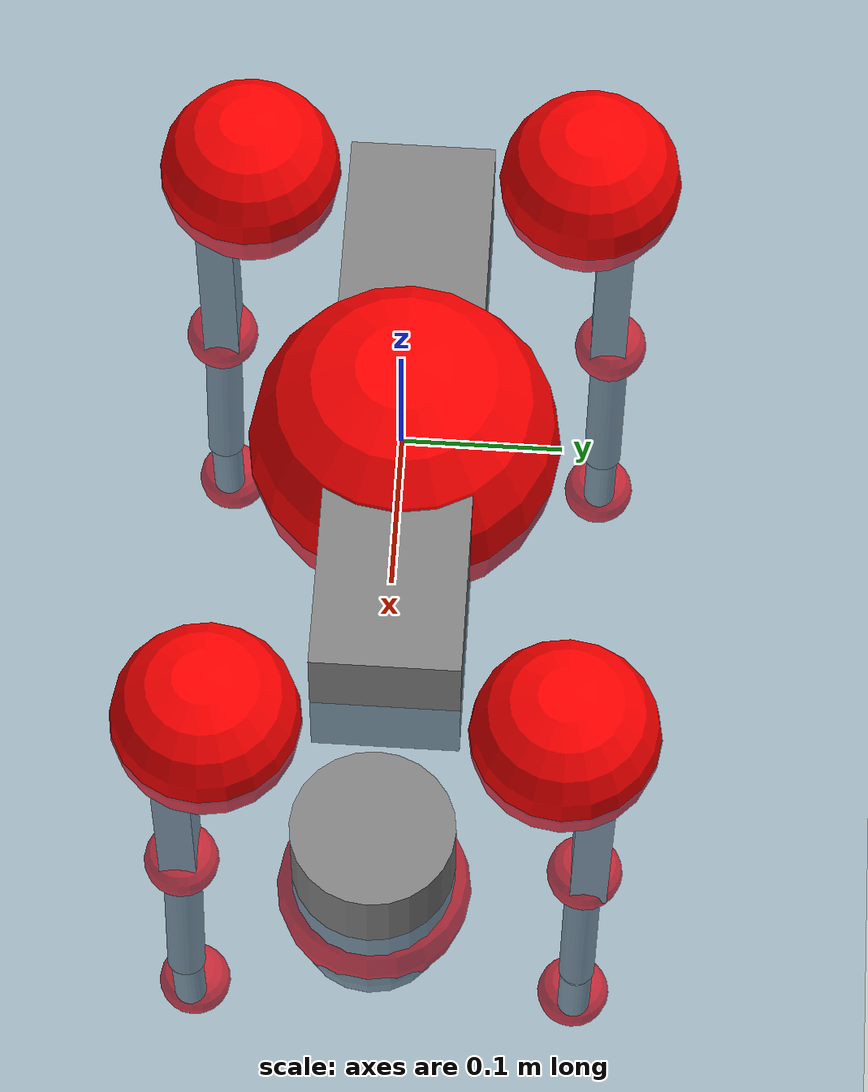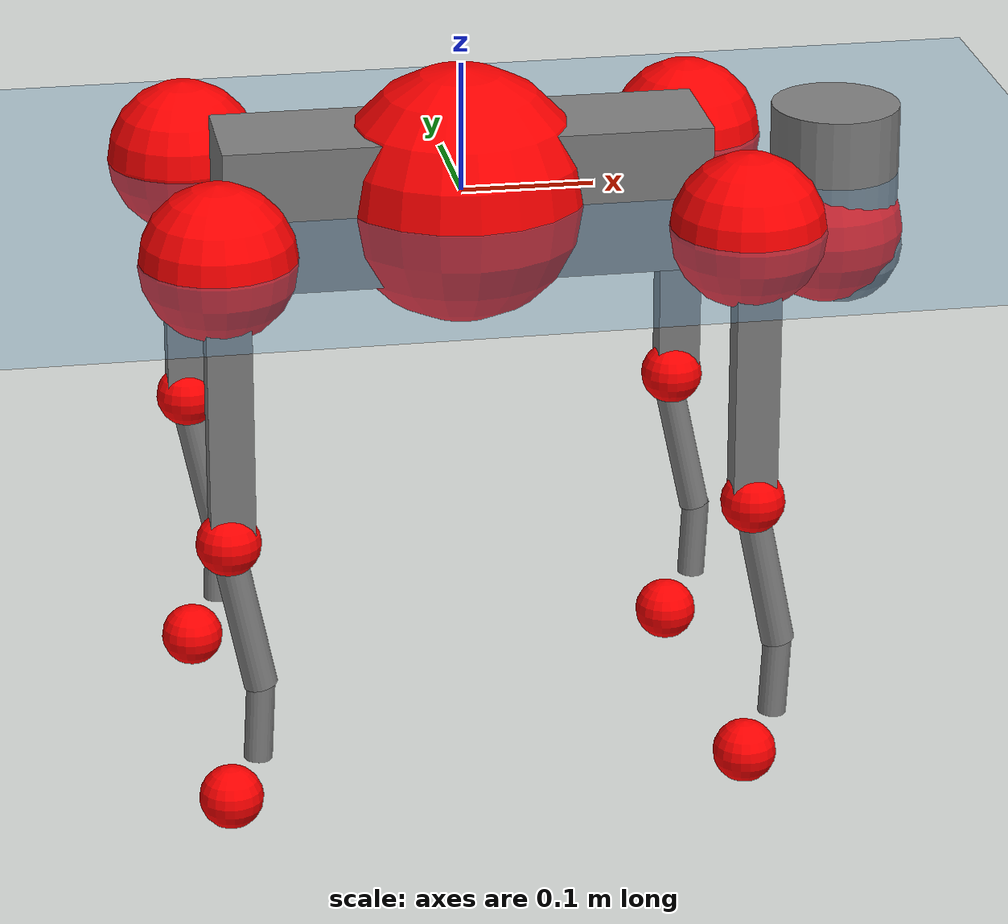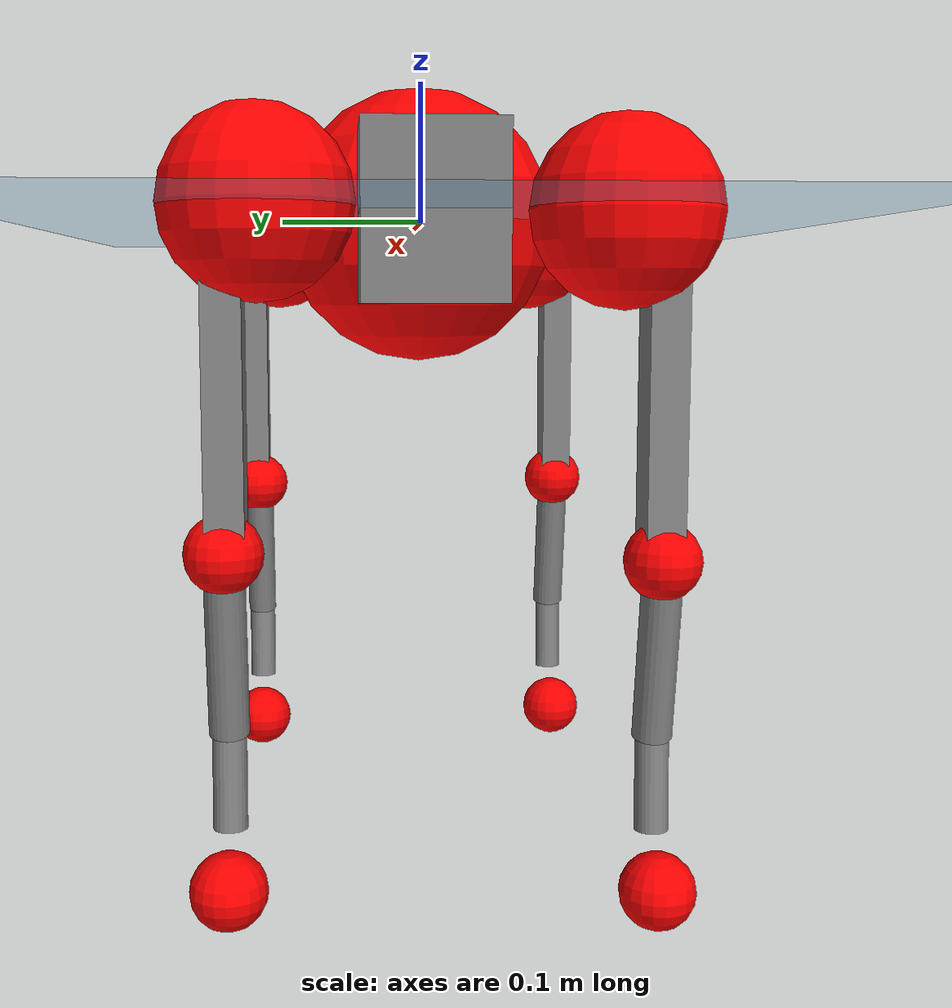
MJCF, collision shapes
<mujoco model="go2">
  <compiler angle="radian" assetdir="assets" balanceinertia="true" inertiafromgeom="false"/>

  <option timestep="0.005" density="1.2" viscosity="2e-05"/>

  <size nkey="1"/>

  <visual>
    <quality shadowsize="8192"/>
    <map shadowclip="0.5"/>
  </visual>

  <default>
    <default class="/">
      <geom contype="0" conaffinity="0" group="1" solref="-1000 -80"/>
      <site size="0.01 0.005 0.005" group="5"/>
      <general forcelimited="true" biastype="affine" gainprm="20" biasprm="0 -20 -0.5"/>
      <default class="go2">
        <joint armature="0.01" damping="0.01" frictionloss="0.2"/>
        <geom condim="1" margin="0.001"/>
        <default class="visual">
          <geom type="mesh" group="2"/>
        </default>
        <default class="collision">
          <geom group="3"/>
          <default class="foot">
            <geom size="0.022 0 0" condim="6" priority="1" friction="0.8 0.02 0.01" solimp="0.015 1 0.022"/>
          </default>
        </default>
        <default class="reward_collision_sphere">
          <geom group="5" rgba="1 0 0 1"/>
        </default>
      </default>
    </default>
  </default>

  <asset>
    <texture type="skybox" colorspace="auto" name="//unnamed_texture_0" builtin="gradient" rgb1="0.95 0.95 0.95" rgb2="0.95 0.95 0.95" width="100" height="600"/>
    <texture type="2d" colorspace="auto" name="texplane" builtin="checker" rgb1="0.345 0.575 0.748" rgb2="0.345 0.575 0.748" markrgb="1 1 1" width="512" height="512"/>
    <material name="MatPlane" class="/" texture="texplane" texuniform="true" texrepeat="2 2" specular="0.9"/>
    <material name="metal" class="/" rgba="0.9 0.95 0.95 1"/>
    <material name="black" class="/" rgba="0 0 0 1"/>
    <material name="white" class="/"/>
    <material name="gray" class="/" rgba="0.671705 0.692426 0.77427 1"/>
    <mesh name="base_0" class="/" file="base_0.obj"/>
    <mesh name="base_1" class="/" file="base_1.obj"/>
    <mesh name="base_2" class="/" file="base_2.obj"/>
    <mesh name="base_3" class="/" file="base_3.obj"/>
    <mesh name="base_4" class="/" file="base_4.obj"/>
    <mesh name="hip_0" class="/" file="hip_0.obj"/>
    <mesh name="hip_1" class="/" file="hip_1.obj"/>
    <mesh name="thigh_0" class="/" file="thigh_0.obj"/>
    <mesh name="thigh_1" class="/" file="thigh_1.obj"/>
    <mesh name="thigh_mirror_0" class="/" file="thigh_mirror_0.obj"/>
    <mesh name="thigh_mirror_1" class="/" file="thigh_mirror_1.obj"/>
    <mesh name="calf_0" class="/" file="calf_0.obj"/>
    <mesh name="calf_1" class="/" file="calf_1.obj"/>
    <mesh name="calf_mirror_0" class="/" file="calf_mirror_0.obj"/>
    <mesh name="calf_mirror_1" class="/" file="calf_mirror_1.obj"/>
    <mesh name="foot" class="/" file="foot.obj"/>
  </asset>

  <worldbody>
    <geom name="floor" class="/" size="100 100 0.125" type="plane" group="0" material="MatPlane"/>
    <light name="toplight_shadow" class="/" pos="0 0 5" dir="0.0990148 0.0990148 -0.990148" type="directional" ambient="0.04 0.04 0.04" diffuse="0.55 0.55 0.55" specular="0.12 0.12 0.12"/>
    <light name="toplight_fill" class="/" pos="0 0 5" dir="0.0990148 0.0990148 -0.990148" type="directional" castshadow="false" ambient="0.04 0.04 0.04" diffuse="0.3 0.3 0.3" specular="0.08 0.08 0.08"/>
    <body name="trunk" childclass="go2" pos="-0.000335681 0.00176146 -0.00192736" quat="1 -8.05343e-05 0.000227159 -0.00045582">
      <inertial pos="0.0193278 0.00145784 -0.00486713" quat="-0.00214242 0.714524 0.000992256 0.699607" mass="6.61426" diaginertia="0.110251 0.0720843 0.0220222"/>
      <joint name="//unnamed_joint_0" type="free" armature="0" damping="0" frictionloss="0"/>
      <geom name="//unnamed_geom_1" class="visual" material="black" mesh="base_0"/>
      <geom name="//unnamed_geom_2" class="visual" material="black" mesh="base_1"/>
      <geom name="//unnamed_geom_3" class="visual" material="black" mesh="base_2"/>
      <geom name="//unnamed_geom_4" class="visual" material="white" mesh="base_3"/>
      <geom name="//unnamed_geom_5" class="visual" material="gray" mesh="base_4"/>
      <geom name="trunk_1" class="collision" size="0.183957 0.0457202 0.0557445" type="box"/>
      <geom name="trunk_2" class="collision" size="0.0488987 0.0440088" pos="0.287606 0 0.00984073" type="cylinder"/>
      <geom name="trunk_3" class="collision" size="0.0459647" pos="0.295679 0 -0.0590444"/>
      <geom name="//unnamed_geom_9" class="reward_collision_sphere" size="0.0977973"/>
      <geom name="//unnamed_geom_10" class="reward_collision_sphere" size="0.0586784" pos="0.28256 0 -0.0442833"/>
      <site name="imu" pos="-0.0177446 0.019879 0.0287866" size="0.00977973"/>
      <camera name="track" pos="0 -1.88141 0" quat="0.707107 0.707107 0 0" mode="trackcom"/>
      <camera name="ego_camera" pos="0.314853 0 0.0442833" quat="-0.5 -0.5 0.5 0.5"/>
      <body name="FL_hip" pos="0.194952 0.0438423 -0.00171868" quat="0.999998 -0.000908035 0.000307476 0.00145195">
        <inertial pos="-0.00732129 0.00264473 -0.00277119" quat="0.496679 0.499985 0.505343 0.49795" mass="0.616054" diaginertia="0.000897311 0.000422456 0.0004395"/>
        <joint name="FL_hip_joint" pos="0 0 0" axis="1 0.00014251 1.04604e-05" range="-1.0908 1.05661" armature="0.00971747" damping="0.0237883" frictionloss="0.177316"/>
        <geom name="//unnamed_geom_11" class="visual" material="metal" mesh="hip_0"/>
        <geom name="//unnamed_geom_12" class="visual" material="gray" mesh="hip_1"/>
        <geom name="//unnamed_geom_13" class="collision" size="0.0449868 0.0195595" pos="0 0.0752563 0" quat="0.707107 0.707107 0 0" type="cylinder"/>
        <geom name="//unnamed_geom_14" class="reward_collision_sphere" size="0.0586784" pos="0 0.0658493 0"/>
        <body name="FL_thigh" pos="0.000993265 0.0884929 -0.00180878" quat="1 -6.61451e-05 -8.11843e-05 -0.000138927">
          <inertial pos="-0.00323883 -0.018586 -0.0281757" quat="0.83433 0.0867608 -0.0291663 0.543614" mass="1.04981" diaginertia="0.00639399 0.00421692 0.000834548"/>
          <joint name="FL_thigh_joint" pos="0 0 0" axis="-0.0146387 0.999689 0.0201703" stiffness="0.00989383" range="-1.57573 3.41824" armature="0.00895647" damping="0.0284354" frictionloss="0.19771"/>
          <geom name="//unnamed_geom_15" class="visual" material="metal" mesh="thigh_0"/>
          <geom name="//unnamed_geom_16" class="visual" material="gray" mesh="thigh_1"/>
          <geom name="//unnamed_geom_17" class="collision" size="0.104154 0.0119802 0.0166255" pos="0 0 -0.104804" quat="0.707107 0 0.707107 0" type="box"/>
          <body name="FL_calf" pos="-0.00413788 -0.00287291 -0.209326" quat="1 -4.37619e-05 -2.64612e-05 9.24352e-06">
            <inertial pos="0.00360624 -0.00216515 -0.1384" quat="0.710695 0.00193036 -0.00501231 0.70348" mass="0.217475" diaginertia="0.00155547 0.00103482 4.85439e-05"/>
            <joint name="FL_calf_joint" pos="0 0 0" axis="0.00480761 0.999975 0.00510728" stiffness="0.0230159" range="-2.70872 -0.806819" armature="0.00994456" damping="0.00431405" frictionloss="0.181103"/>
            <geom name="//unnamed_geom_18" class="visual" material="gray" mesh="calf_0"/>
            <geom name="//unnamed_geom_19" class="visual" material="black" mesh="calf_1"/>
            <geom name="FL_calf0" class="collision" size="0.0117357 0.0586784" pos="0.00807314 0 -0.0590444" quat="0.994493 0 -0.104807 0" type="cylinder"/>
            <geom name="//unnamed_geom_21" class="collision" size="0.0107577 0.0317841" pos="0.0201829 0 -0.145643" quat="0.999688 0 0.0249974 0" type="cylinder"/>
            <geom name="//unnamed_geom_22" class="visual" pos="0 0 -0.209607" quat="1 0 0 0" material="black" mesh="foot"/>
            <geom name="FL_foot" class="foot" size="0.0244264" pos="-0.00201829 0 -0.209607"/>
            <geom name="//unnamed_geom_24" class="reward_collision_sphere" size="0.0244493"/>
            <geom name="//unnamed_geom_25" class="reward_collision_sphere" size="0.0244493" pos="-0.00201829 0 -0.209607"/>
            <site name="FL_foot" class="foot" pos="-0.00201829 0 -0.209607" size="0.00977973"/>
          </body>
        </body>
      </body>
      <body name="FR_hip" pos="0.19701 -0.0417589 -0.00265786" quat="1 4.79791e-05 4.94753e-05 2.35211e-05">
        <inertial pos="-0.00801768 -0.00240966 -0.000550456" quat="0.500477 0.512545 0.498536 0.488141" mass="0.614755" diaginertia="0.000873297 0.000436782 0.000439552"/>
        <joint name="FR_hip_joint" pos="0 0 0" axis="0.999999 0.00103409 -0.000357049" stiffness="0.0117529" range="-1.04567 1.05832" armature="0.00967229" damping="0.00754007" frictionloss="0.22117"/>
        <geom name="//unnamed_geom_26" class="visual" pos="0 -3.7781e-10 -1.62051e-08" quat="4.63268e-05 1 0 0" material="metal" mesh="hip_0"/>
        <geom name="//unnamed_geom_27" class="visual" pos="0 -6.12475e-10 4.00813e-08" quat="4.63268e-05 1 0 0" material="gray" mesh="hip_1"/>
        <geom name="//unnamed_geom_28" class="collision" size="0.0449868 0.0195595" pos="0 -0.0752563 0" quat="0.707107 0.707107 0 0" type="cylinder"/>
        <geom name="//unnamed_geom_29" class="reward_collision_sphere" size="0.0586784" pos="0 -0.0658493 0"/>
        <body name="FR_thigh" pos="0.00184404 -0.089983 0.000836609" quat="0.999999 -0.000868129 -0.000318029 0.00101624">
          <inertial pos="-0.0039739 0.0213062 -0.029314" quat="0.555507 -0.0002712 0.0902564 0.826599" mass="1.07683" diaginertia="0.0058878 0.00415459 0.000783174"/>
          <joint name="FR_thigh_joint" pos="0 0 0" axis="5.95309e-05 -1 -0.000178798" range="-3.43841 1.56119" armature="0.0100273" damping="0.0154209" frictionloss="0.219905"/>
          <geom name="//unnamed_geom_30" class="visual" material="metal" mesh="thigh_mirror_0"/>
          <geom name="//unnamed_geom_31" class="visual" material="gray" mesh="thigh_mirror_1"/>
          <geom name="//unnamed_geom_32" class="collision" size="0.104154 0.0119802 0.0166255" pos="0 0 -0.104804" quat="0.707107 0 0.707107 0" type="box"/>
          <body name="FR_calf" pos="0.000908555 0.000613935 -0.209355" quat="1 5.50547e-05 4.24782e-05 8.58811e-05">
            <inertial pos="0.008672 -0.000121982 -0.14341" quat="0.702082 0.00198588 -0.00357076 0.712084" mass="0.238694" diaginertia="0.00169247 0.00108197 5.29609e-05"/>
            <joint name="FR_calf_joint" pos="0 0 0" axis="0.00431748 -0.999893 -0.0139997" range="0.822121 2.6826" armature="0.00972569" damping="0.00875132" frictionloss="0.19841"/>
            <geom name="//unnamed_geom_33" class="visual" material="gray" mesh="calf_mirror_0"/>
            <geom name="//unnamed_geom_34" class="visual" material="black" mesh="calf_mirror_1"/>
            <geom name="FR_calf0" class="collision" size="0.0127137 0.0586784" pos="0.0100914 0 -0.0590444" quat="0.995004 0 -0.0998334 0" type="cylinder"/>
            <geom name="//unnamed_geom_36" class="collision" size="0.0107577 0.0317841" pos="0.0201829 0 -0.145643" quat="0.999688 0 0.0249974 0" type="cylinder"/>
            <geom name="//unnamed_geom_37" class="visual" pos="0 0 -0.209607" quat="1 0 0 0" material="black" mesh="foot"/>
            <geom name="FR_foot" class="foot" size="0.0193411" pos="-0.00201829 0 -0.209607"/>
            <geom name="//unnamed_geom_39" class="reward_collision_sphere" size="0.0244493"/>
            <geom name="//unnamed_geom_40" class="reward_collision_sphere" size="0.0244493" pos="-0.00201829 0 -0.209607"/>
            <site name="FR_foot" class="foot" pos="-0.00201829 0 -0.209607" size="0.00977973"/>
          </body>
        </body>
      </body>
      <body name="RL_hip" pos="-0.197875 0.0411732 0.00312745" quat="1 -0.00020755 -0.000101888 -0.00022303">
        <inertial pos="0.00462558 0.000899651 0.00289889" quat="0.500176 0.504241 0.495559 0.499987" mass="0.606484" diaginertia="0.000892902 0.000427218 0.000438775"/>
        <joint name="RL_hip_joint" pos="0 0 0" axis="-0.999984 -0.000382051 -0.00561257" stiffness="0.0133963" range="-1.11877 1.00873" armature="0.00997741" damping="0.00662655" frictionloss="0.176589"/>
        <geom name="//unnamed_geom_41" class="visual" pos="-2.18404e-10 0 -4.28122e-08" quat="4.63268e-05 0 1 0" material="metal" mesh="hip_0"/>
        <geom name="//unnamed_geom_42" class="visual" pos="-3.54059e-10 0 -3.79683e-08" quat="4.63268e-05 0 1 0" material="gray" mesh="hip_1"/>
        <geom name="//unnamed_geom_43" class="collision" size="0.0449868 0.0195595" pos="0 0.0752563 0" quat="0.707107 0.707107 0 0" type="cylinder"/>
        <geom name="//unnamed_geom_44" class="reward_collision_sphere" size="0.0586784" pos="0 0.0658493 0"/>
        <body name="RL_thigh" pos="-0.000176892 0.0858793 0.00184727" quat="1 1.00548e-05 3.04968e-05 -3.36369e-06">
          <inertial pos="-0.0021456 -0.0194339 -0.0283029" quat="0.826606 0.0925828 -0.0221552 0.554671" mass="1.07944" diaginertia="0.00662091 0.00440369 0.000857157"/>
          <joint name="RL_thigh_joint" pos="0 0 0" axis="0.00327618 0.999981 -0.00529022" range="-0.48468 4.49146" armature="0.0110472" damping="0.00858657" frictionloss="0.203798"/>
          <geom name="//unnamed_geom_45" class="visual" material="metal" mesh="thigh_0"/>
          <geom name="//unnamed_geom_46" class="visual" material="gray" mesh="thigh_1"/>
          <geom name="//unnamed_geom_47" class="collision" size="0.104154 0.0119802 0.0166255" pos="0 0 -0.104804" quat="0.707107 0 0.707107 0" type="box"/>
          <body name="RL_calf" pos="-0.000666636 0.00172681 -0.209833" quat="1 -9.35807e-05 4.17553e-05 3.21344e-06">
            <inertial pos="0.00779198 -0.00188592 -0.138411" quat="0.711311 0.00427086 -0.005122 0.702846" mass="0.223864" diaginertia="0.00155232 0.00110194 4.70514e-05"/>
            <joint name="RL_calf_joint" pos="0 0 0" axis="-0.00503012 0.999984 0.00247327" stiffness="0.0216307" range="-2.67207 -0.834437" armature="0.0104034" damping="0" frictionloss="0.209319"/>
            <geom name="//unnamed_geom_48" class="visual" material="gray" mesh="calf_0"/>
            <geom name="//unnamed_geom_49" class="visual" material="black" mesh="calf_1"/>
            <geom name="RL_calf0" class="collision" size="0.0127137 0.0586784" pos="0.0100914 0 -0.0590444" quat="0.995004 0 -0.0998334 0" type="cylinder"/>
            <geom name="//unnamed_geom_51" class="collision" size="0.0107577 0.0317841" pos="0.0201829 0 -0.145643" quat="0.999688 0 0.0249974 0" type="cylinder"/>
            <geom name="//unnamed_geom_52" class="visual" pos="0 0 -0.209607" quat="1 0 0 0" material="black" mesh="foot"/>
            <geom name="RL_foot" class="foot" size="0.0226171" pos="-0.00201829 0 -0.209607"/>
            <geom name="//unnamed_geom_54" class="reward_collision_sphere" size="0.0244493"/>
            <geom name="//unnamed_geom_55" class="reward_collision_sphere" size="0.0244493" pos="-0.00201829 0 -0.209607"/>
            <site name="RL_foot" class="foot" pos="-0.00201829 0 -0.209607" size="0.00977973"/>
          </body>
        </body>
      </body>
      <body name="RR_hip" pos="-0.195162 -0.0466143 -0.00134386" quat="0.999999 3.26521e-05 0.00112079 -0.000808099">
        <inertial pos="0.00497511 -0.00339434 -0.000474941" quat="0.498431 0.497786 0.497749 0.505986" mass="0.680092" diaginertia="0.000939729 0.000444782 0.000464355"/>
        <joint name="RR_hip_joint" pos="0 0 0" axis="-0.999942 0.00289921 0.0103587" range="-0.997852 1.0613" armature="0.00898552" damping="0.0215686" frictionloss="0.220669"/>
        <geom name="//unnamed_geom_56" class="visual" pos="2.16034e-10 -3.7781e-10 -2.66071e-08" quat="2.14617e-09 4.63268e-05 4.63268e-05 -1" material="metal" mesh="hip_0"/>
        <geom name="//unnamed_geom_57" class="visual" pos="3.59919e-10 -6.12475e-10 -7.80496e-08" quat="2.14617e-09 4.63268e-05 4.63268e-05 -1" material="gray" mesh="hip_1"/>
        <geom name="//unnamed_geom_58" class="collision" size="0.0449868 0.0195595" pos="0 -0.0752563 0" quat="0.707107 0.707107 0 0" type="cylinder"/>
        <geom name="//unnamed_geom_59" class="reward_collision_sphere" size="0.0586784" pos="0 -0.0658493 0"/>
        <body name="RR_thigh" pos="0.0027906 -0.0907567 -0.00277667" quat="1 -1.18016e-05 0.000162485 -0.000477906">
          <inertial pos="-0.0047793 0.0213099 -0.0321456" quat="0.552616 -0.0196118 0.0847519 0.828884" mass="1.09924" diaginertia="0.00646505 0.00429127 0.000812429"/>
          <joint name="RR_thigh_joint" pos="0 0 0" axis="0.00156598 -0.999999 6.2208e-05" range="-4.48591 0.486243" armature="0.00959439" damping="0.0187172" frictionloss="0.204498"/>
          <geom name="//unnamed_geom_60" class="visual" material="metal" mesh="thigh_mirror_0"/>
          <geom name="//unnamed_geom_61" class="visual" material="gray" mesh="thigh_mirror_1"/>
          <geom name="//unnamed_geom_62" class="collision" size="0.104154 0.0119802 0.0166255" pos="0 0 -0.104804" quat="0.707107 0 0.707107 0" type="box"/>
          <body name="RR_calf" pos="-0.00282823 -0.0011345 -0.208571" quat="1 -6.19763e-07 0.000814125 7.93013e-05">
            <inertial pos="0.00886234 0.000344847 -0.139211" quat="0.700787 -0.00257935 0.00992534 0.713297" mass="0.22382" diaginertia="0.00149873 0.00105702 4.88089e-05"/>
            <joint name="RR_calf_joint" pos="0 0 0" axis="-0.0020691 -0.999997 0.00145084" stiffness="0.00201456" range="0.830184 2.75239" armature="0.00882939" damping="0.0306717" frictionloss="0.2032"/>
            <geom name="//unnamed_geom_63" class="visual" material="gray" mesh="calf_mirror_0"/>
            <geom name="//unnamed_geom_64" class="visual" material="black" mesh="calf_mirror_1"/>
            <geom name="RR_calf0" class="collision" size="0.0127137 0.0586784" pos="0.0100914 0 -0.0590444" quat="0.995004 0 -0.0998334 0" type="cylinder"/>
            <geom name="//unnamed_geom_66" class="collision" size="0.0107577 0.0317841" pos="0.0201829 0 -0.145643" quat="0.999688 0 0.0249974 0" type="cylinder"/>
            <geom name="//unnamed_geom_67" class="visual" pos="0 0 -0.209607" quat="1 0 0 0" material="black" mesh="foot"/>
            <geom name="RR_foot" class="foot" size="0.0169107" pos="-0.00201829 0 -0.209607"/>
            <geom name="//unnamed_geom_69" class="reward_collision_sphere" size="0.0244493"/>
            <geom name="//unnamed_geom_70" class="reward_collision_sphere" size="0.0244493" pos="-0.00201829 0 -0.209607"/>
            <site name="RR_foot" class="foot" pos="-0.00201829 0 -0.209607" size="0.00977973"/>
          </body>
        </body>
      </body>
    </body>
  </worldbody>

  <contact>
    <pair class="/" geom1="floor" geom2="FL_foot" name="//unnamed_contact_0"/>
    <pair class="/" geom1="floor" geom2="FR_foot" name="//unnamed_contact_1"/>
    <pair class="/" geom1="floor" geom2="RL_foot" name="//unnamed_contact_2"/>
    <pair class="/" geom1="floor" geom2="RR_foot" name="//unnamed_contact_3"/>
  </contact>

  <actuator>
    <general name="FL_hip" class="/" joint="FL_hip_joint" forcerange="-24.8546 24.8546" gainprm="18.4734" biasprm="0 -18.4734 -0.473242"/>
    <general name="FL_thigh" class="/" joint="FL_thigh_joint" forcerange="-22.1043 22.1043" gainprm="18.4734" biasprm="0 -18.4734 -0.473242"/>
    <general name="FL_calf" class="/" joint="FL_calf_joint" forcerange="-47.8819 47.8819" gainprm="18.4734" biasprm="0 -18.4734 -0.473242"/>
    <general name="FR_hip" class="/" joint="FR_hip_joint" forcerange="-24.0186 24.0186" gainprm="18.4734" biasprm="0 -18.4734 -0.473242"/>
    <general name="FR_thigh" class="/" joint="FR_thigh_joint" forcerange="-24.2428 24.2428" gainprm="18.4734" biasprm="0 -18.4734 -0.473242"/>
    <general name="FR_calf" class="/" joint="FR_calf_joint" forcerange="-36.4448 36.4448" gainprm="18.4734" biasprm="0 -18.4734 -0.473242"/>
    <general name="RL_hip" class="/" joint="RL_hip_joint" forcerange="-21.0714 21.0714" gainprm="18.4734" biasprm="0 -18.4734 -0.473242"/>
    <general name="RL_thigh" class="/" joint="RL_thigh_joint" forcerange="-24.9585 24.9585" gainprm="18.4734" biasprm="0 -18.4734 -0.473242"/>
    <general name="RL_calf" class="/" joint="RL_calf_joint" forcerange="-44.3819 44.3819" gainprm="18.4734" biasprm="0 -18.4734 -0.473242"/>
    <general name="RR_hip" class="/" joint="RR_hip_joint" forcerange="-23.3393 23.3393" gainprm="18.4734" biasprm="0 -18.4734 -0.473242"/>
    <general name="RR_thigh" class="/" joint="RR_thigh_joint" forcerange="-26.396 26.396" gainprm="18.4734" biasprm="0 -18.4734 -0.473242"/>
    <general name="RR_calf" class="/" joint="RR_calf_joint" forcerange="-45.3695 45.3695" gainprm="18.4734" biasprm="0 -18.4734 -0.473242"/>
  </actuator>

  <sensor>
    <gyro site="imu" name="imu_angular_velocity"/>
    <velocimeter site="imu" name="imu_linear_velocity"/>
    <framelinvel objtype="site" objname="FL_foot" name="FL_foot_global_linear_velocity"/>
    <framelinvel objtype="site" objname="FR_foot" name="FR_foot_global_linear_velocity"/>
    <framelinvel objtype="site" objname="RL_foot" name="RL_foot_global_linear_velocity"/>
    <framelinvel objtype="site" objname="RR_foot" name="RR_foot_global_linear_velocity"/>
  </sensor>

  <keyframe>
    <key name="home" qpos="0 0 0.325 1 0 0 0 0.1 0.8 -1.5 -0.1 -0.8 1.5 -0.1 0.8 -1.5 0.1 -0.8 1.5"/>
  </keyframe>
</mujoco>
